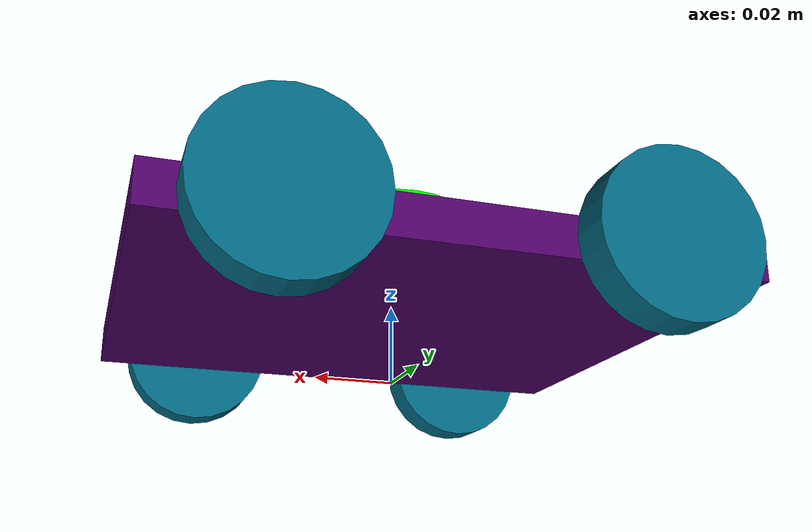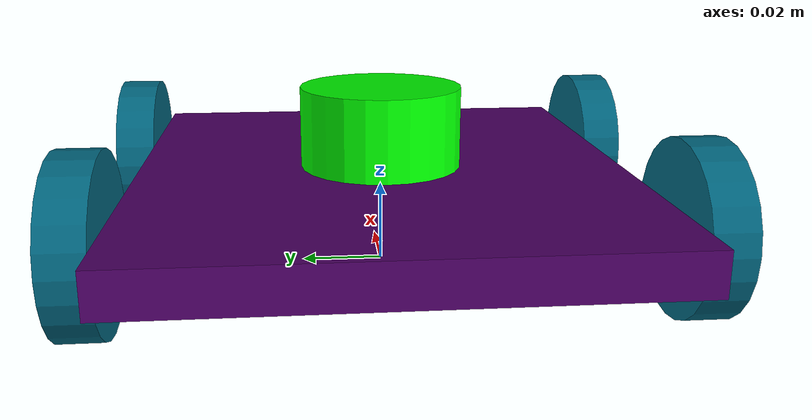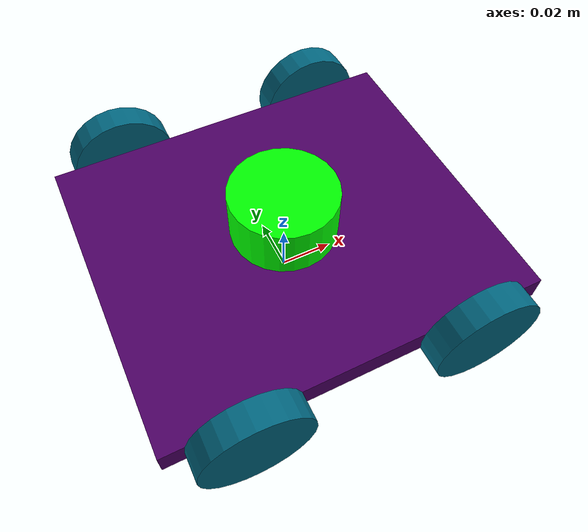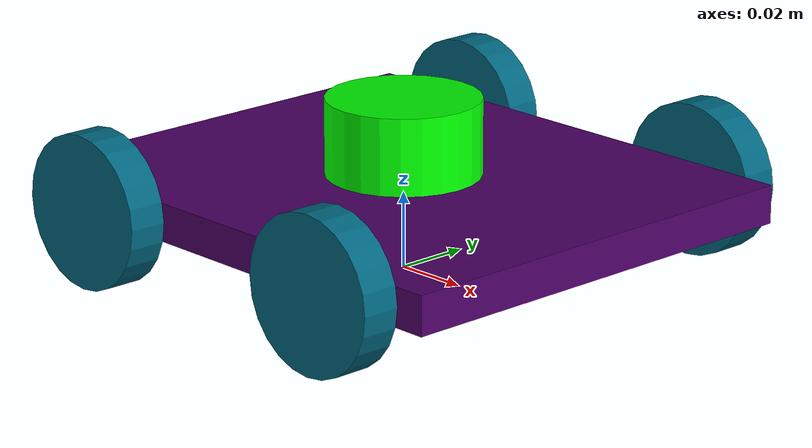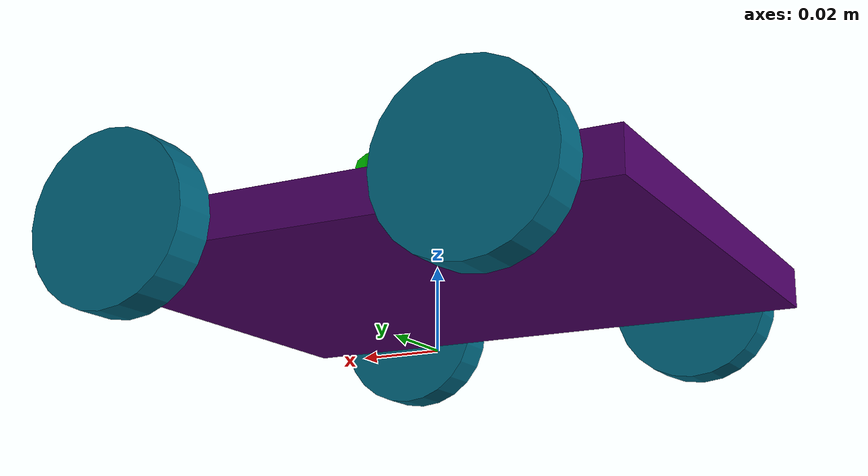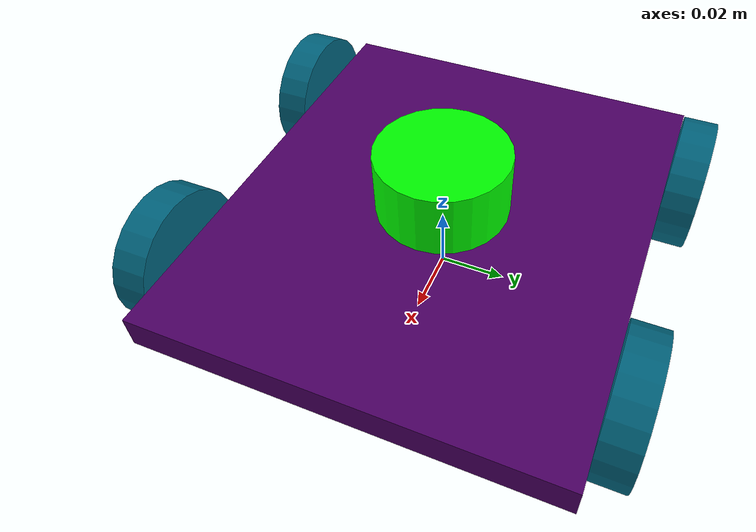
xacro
<?xml version='1.0'?>
<robot xmlns:xacro ="http://www.ros.org/wiki/xacro" name="car-robot">
	<xacro:include filename="$(find test)/urdf/car-robot-params.xacro" />
	<xacro:include filename="$(find test)/urdf/car-robot-inertia.xacro" />
	<xacro:include filename="$(find test)/urdf/car-robot-chassis.xacro" />
	<xacro:include filename="$(find test)/urdf/car-robot-wheel.xacro" />
	<xacro:include filename="$(find test)/urdf/car-robot-gazebo.xacro" />

</robot>

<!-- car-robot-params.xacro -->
<robot xmlns:xacro ="http://www.ros.org/wiki/xacro">
	<xacro:property name="chassis_length" value="0.14" />
	<xacro:property name="chassis_width" value="0.12" />
	<xacro:property name="chassis_height" value="0.01" />
	<xacro:property name="chassis_mass" value="0.8" />
	<xacro:property name="wheel_radius" value="0.02" />
	<xacro:property name="wheel_height" value="0.01" />
	<xacro:property name="wheel_mass" value="0.2" />
</robot>

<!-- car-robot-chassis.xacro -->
<robot xmlns:xacro ="http://www.ros.org/wiki/xacro" name="car_robot_chassis">

	<!--dummy link-->
	<link name="base_link"/>

	<!--chassis link-->
	<link name="chassis-link">
		<visual>
			<origin xyz="0 0 0" rpy="0 0 0" />
			<geometry>
				<box size="${chassis_length} ${chassis_width} ${chassis_height}" />
			</geometry>
			<material name="brown">
				<color rgba="0.3 0 0.4 1"/>
			</material>
		</visual>
		<collision>
			<origin xyz="0 0 0" rpy="0 0 0" />
			<geometry>
				<box size="${chassis_length} ${chassis_width} ${chassis_height}" />
			</geometry>
		</collision>
		<inertial>
			<mass value="0.8" />
			<inertia ixx="0.00048333" iyy="0.0013367" izz="0.0018133" ixy="0" ixz="0" iyz="0"/>
		</inertial>
	</link>

	<joint name="joint-base-chassis" type="fixed">
		<parent link="base_link"/>
		<child link="chassis-link"/>
		<origin xyz="0 0 ${wheel_radius}" rpy="0 0 0" />
	</joint>
</robot>

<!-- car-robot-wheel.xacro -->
<robot xmlns:xacro ="http://www.ros.org/wiki/xacro" name="car_robot_wheel">

	<material name="blue">
		<color rgba="0 0.4 0.5 1"/>
	</material>

	<xacro:macro name="wheel" params="x_position y_position x_reflect y_reflect">
		<!-- ${x_position}-${y_position}-wheel-link -->
		<link name="${x_position}-${y_position}-wheel-link">
			<visual>
				<origin xyz="0 0 0" rpy="${pi * 0.5} 0 0" />
				<geometry>
					<cylinder radius ="${wheel_radius}" length="${wheel_height}" />
				</geometry>
				<material name="blue" />
			</visual>
			<collision>
				<origin xyz="0 0 0" rpy="${pi * 0.5} 0 0" />
				<geometry>
					<cylinder radius ="${wheel_radius}" length="${wheel_height}" />
				</geometry>

			</collision>
			<inertial>
				<mass value="${wheel_mass}" />
				<inertia ixx="0.0001" ixy="0.0" ixz="0.0" iyy="0.0002" iyz="0.0" izz="0.0003"/>
			</inertial>

		</link>
		<joint name="joint-chassis-${x_position}-${y_position}-wheel" type="continuous">
			<parent link="chassis-link"/>
			<child link="${x_position}-${y_position}-wheel-link"/>
			<origin xyz="${x_reflect*0.3*chassis_length} ${y_reflect*(chassis_width/2+wheel_height/2)} 0" rpy="0 0 0" />
			<axis xyz="0 1 0" />
		</joint>
	</xacro:macro>

	<xacro:wheel x_position="front" y_position="right" x_reflect="1" y_reflect="1" />
	<xacro:wheel x_position="front" y_position="left" x_reflect="1" y_reflect="-1" />
	<xacro:wheel x_position="rare" y_position="right" x_reflect="-1" y_reflect="1" />
	<xacro:wheel x_position="rare" y_position="left" x_reflect="-1" y_reflect="-1" />
</robot>

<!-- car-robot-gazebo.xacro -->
<robot xmlns:xacro="http://www.ros.org/wiki/xacro" name="car-robot-gazebo">

  <gazebo reference="chassis-link">
    <material>Gazebo/DarkGrey</material>
  </gazebo>

  <xacro:macro name="color_wheel" params="x_position y_position">
    <gazebo reference="${x_position}-${y_position}-wheel-link">
      <mu1>5000.0</mu1>
      <mu2>5000.0</mu2>
      <material>Gazebo/Purple</material>
    </gazebo>
  </xacro:macro>

  <!-- Differential drive plugin -->
  <gazebo>
    <plugin name="skid_steer_drive" filename="libgazebo_ros_diff_drive.so">
      <!-- Wheel joints -->
      <num_wheel_pairs>2</num_wheel_pairs>
      <left_joint>joint-chassis-front-left-wheel</left_joint>
      <left_joint>joint-chassis-rare-left-wheel</left_joint>
      <right_joint>joint-chassis-front-right-wheel</right_joint>
      <right_joint>joint-chassis-rare-right-wheel</right_joint>

      <!-- Kinematics -->
      <wheel_separation>${chassis_width}</wheel_separation>
      <wheel_diameter>${2 * wheel_radius}</wheel_diameter>

      <!-- Limits -->
      <max_wheel_torque>4.0</max_wheel_torque>      <!-- Adjust as per your model -->
      <max_wheel_acceleration>0.2</max_wheel_acceleration>      <!-- Optional -->

      <!-- Odometry & Frames -->
      <odometry_topic>odom</odometry_topic>      <!-- Important -->
      <odometry_frame>odom</odometry_frame>      <!-- Important -->
      <robot_base_frame>base_link</robot_base_frame>      <!-- Important -->
      <publish_odom>true</publish_odom>      <!-- Crucial -->
      <publish_odom_tf>true</publish_odom_tf>      <!-- Crucial -->

      <command_topic>cmd_vel</command_topic>

      <!-- Misc -->
      <publish_wheel_joint_state>true</publish_wheel_joint_state>
      <update_rate>20.0</update_rate>      <!-- Stable frequency -->
    </plugin>
  </gazebo>

  <!-- Wheels -->
  <xacro:color_wheel x_position="front" y_position="right"/>
  <xacro:color_wheel x_position="front" y_position="left"/>
  <xacro:color_wheel x_position="rare" y_position="right"/>
  <xacro:color_wheel x_position="rare" y_position="left"/>

  <!-- Lidar Link -->
  <link name="lidar_link">
    <visual name="lidar_visual">
      <geometry>
        <cylinder length="0.02" radius="0.02"/>
      </geometry>
      <material name = "green">
        <color rgba="0.0 1.0 0.0 1.0"/>
      </material>
    </visual>
    <collision>
      <geometry>
        <cylinder length="0.02" radius="0.02"/>
      </geometry>
    </collision>
    <inertial>
      <mass value="0.1"/>
      <inertia ixx="0.0001" ixy="0.0" ixz="0.0" iyy="0.0001" iyz="0.0" izz="0.0001"/>
    </inertial>
  </link>

  <!-- Joint to base_link -->
  <joint name="lidar_joint" type="fixed">
    <parent link="base_link"/>
    <child link="lidar_link"/>
    <origin xyz="0 0 0.035" rpy="0 0 0"/>
  </joint>

  <!-- Gazebo Lidar Plugin -->
  <gazebo reference="lidar_link">
    <sensor name="lidar" type="ray">
      <update_rate>10</update_rate>
      <pose>0 0 0 0 0 0</pose>
      <visualize>true</visualize>
      <ray>
        <scan>
          <horizontal>
            <samples>360</samples>
            <resolution>1</resolution>
            <min_angle>-1.5707</min_angle>            <!-- -90 degrees (left) -->
            <max_angle>1.5707</max_angle>            <!-- +90 degrees (right) -->
          </horizontal>
        </scan>
        <range>
          <min>0.1</min>
          <max>10.0</max>
          <resolution>0.01</resolution>
        </range>
        <noise>
          <type>gaussian</type>
          <mean>0.0</mean>
          <stddev>0.01</stddev>
        </noise>
      </ray>
      <plugin name="gazebo_ros_head_hokuyo_controlle" filename="libgazebo_ros_ray_sensor.so">
        <ros>
          <remapping>~/out:=/scan</remapping>
        </ros>
        <output_type>sensor_msgs/LaserScan</output_type>
      </plugin>
    </sensor>
  </gazebo>

</robot>
